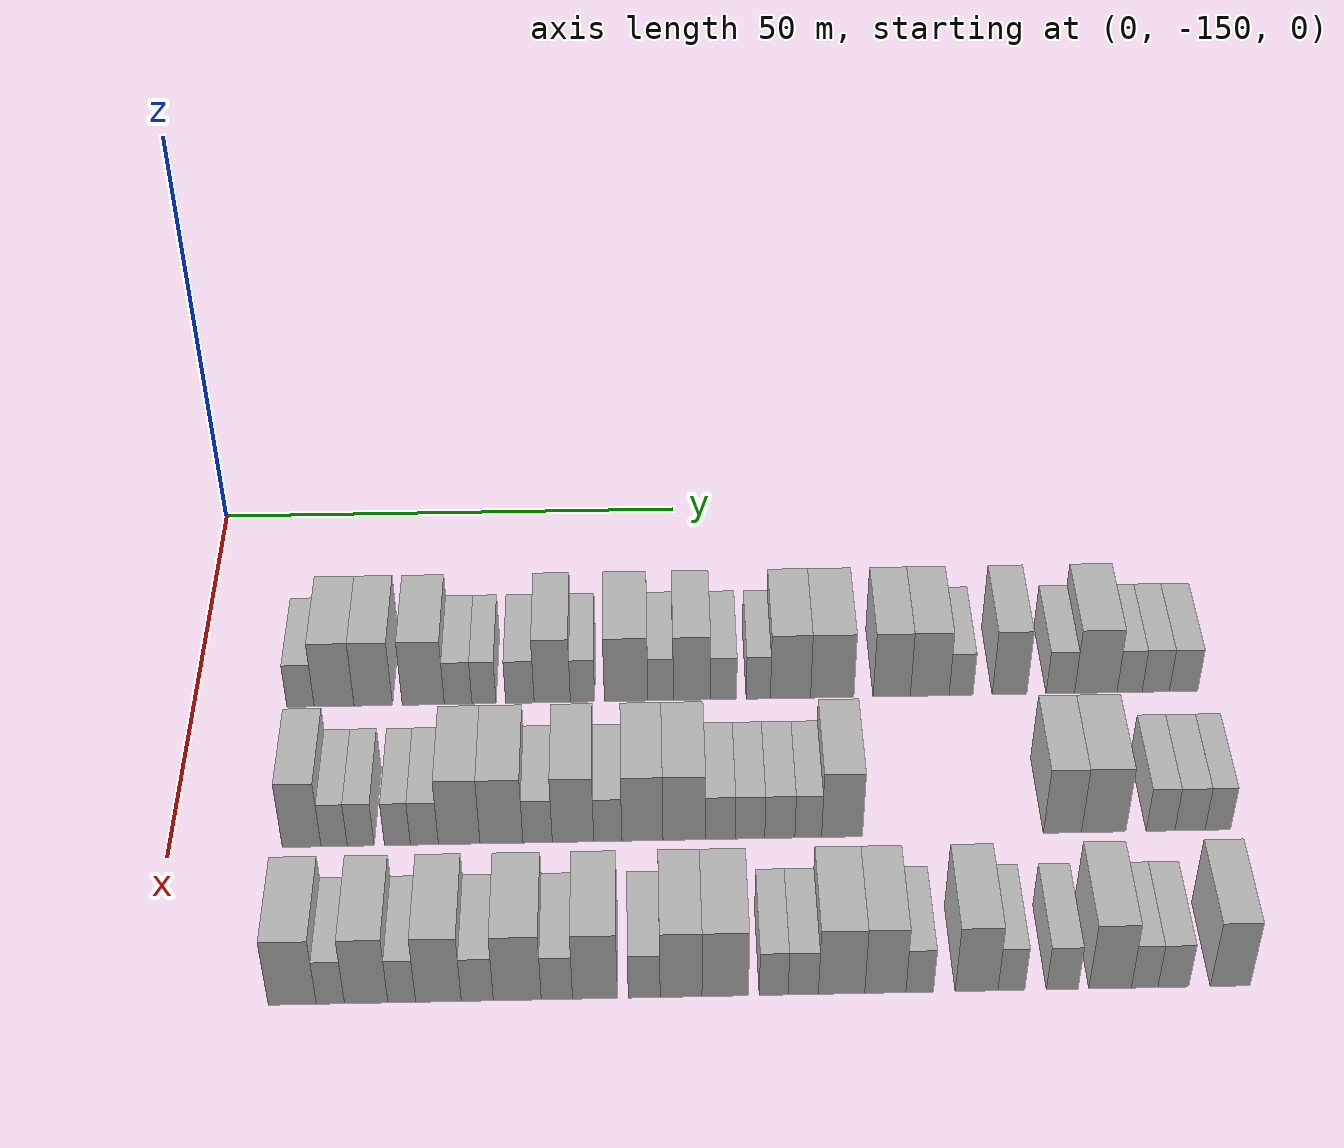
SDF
<sdf version="1.6">
 <world name="default">
  <model name="building_23">
   <static>1</static>
   <pose>25.0000 -138.9310 0 0.000000 0.000000 0.000000</pose>
   <link name="link">
    <pose>0 0 3.00 0 0 0</pose>
    <collision name="collision"><geometry><box><size>10.0000 2.8036 6.0000</size></box></geometry></collision>
    <visual name="visual">
     <cast_shadows>0</cast_shadows>
     <geometry><box><size>10.0000 2.8036 6.0000</size></box></geometry>
     <material>
      <script>
       <uri>model://HANNAS_wall/materials/scripts</uri>
       <uri>model://HANNAS_wall/materials/textures</uri>
       <name>vrc/HANNAS_wall</name>
      </script>
     </material>
    </visual>
   </link>
  </model>
  <model name="building_24">
   <static>1</static>
   <pose>25.0000 -135.4811 0 0.000000 0.000000 0.000000</pose>
   <link name="link">
    <pose>0 0 4.50 0 0 0</pose>
    <collision name="collision"><geometry><box><size>10.0000 4.0961 9.0000</size></box></geometry></collision>
    <visual name="visual">
     <cast_shadows>0</cast_shadows>
     <geometry><box><size>10.0000 4.0961 9.0000</size></box></geometry>
     <material>
      <script>
       <uri>model://HANNAS_wall/materials/scripts</uri>
       <uri>model://HANNAS_wall/materials/textures</uri>
       <name>vrc/HANNAS_wall</name>
      </script>
     </material>
    </visual>
   </link>
  </model>
  <model name="building_25">
   <static>1</static>
   <pose>25.0000 -131.4556 0 0.000000 0.000000 0.000000</pose>
   <link name="link">
    <pose>0 0 4.50 0 0 0</pose>
    <collision name="collision"><geometry><box><size>10.0000 3.9550 9.0000</size></box></geometry></collision>
    <visual name="visual">
     <cast_shadows>0</cast_shadows>
     <geometry><box><size>10.0000 3.9550 9.0000</size></box></geometry>
     <material>
      <script>
       <uri>model://HANNAS_wall/materials/scripts</uri>
       <uri>model://HANNAS_wall/materials/textures</uri>
       <name>vrc/HANNAS_wall</name>
      </script>
     </material>
    </visual>
   </link>
  </model>
  <model name="building_26">
   <static>1</static>
   <pose>25.0000 -126.3075 0 0.000000 0.000000 0.000000</pose>
   <link name="link">
    <pose>0 0 4.50 0 0 0</pose>
    <collision name="collision"><geometry><box><size>10.0000 4.3412 9.0000</size></box></geometry></collision>
    <visual name="visual">
     <cast_shadows>0</cast_shadows>
     <geometry><box><size>10.0000 4.3412 9.0000</size></box></geometry>
     <material>
      <script>
       <uri>model://HANNAS_wall/materials/scripts</uri>
       <uri>model://HANNAS_wall/materials/textures</uri>
       <name>vrc/HANNAS_wall</name>
      </script>
     </material>
    </visual>
   </link>
  </model>
  <model name="building_27">
   <static>1</static>
   <pose>25.0000 -122.7158 0 0.000000 0.000000 0.000000</pose>
   <link name="link">
    <pose>0 0 3.00 0 0 0</pose>
    <collision name="collision"><geometry><box><size>10.0000 2.8422 6.0000</size></box></geometry></collision>
    <visual name="visual">
     <cast_shadows>0</cast_shadows>
     <geometry><box><size>10.0000 2.8422 6.0000</size></box></geometry>
     <material>
      <script>
       <uri>model://HANNAS_wall/materials/scripts</uri>
       <uri>model://HANNAS_wall/materials/textures</uri>
       <name>vrc/HANNAS_wall</name>
      </script>
     </material>
    </visual>
   </link>
  </model>
  <model name="building_28">
   <static>1</static>
   <pose>25.0000 -120.0537 0 0.000000 0.000000 0.000000</pose>
   <link name="link">
    <pose>0 0 3.00 0 0 0</pose>
    <collision name="collision"><geometry><box><size>10.0000 2.4821 6.0000</size></box></geometry></collision>
    <visual name="visual">
     <cast_shadows>0</cast_shadows>
     <geometry><box><size>10.0000 2.4821 6.0000</size></box></geometry>
     <material>
      <script>
       <uri>model://HANNAS_wall/materials/scripts</uri>
       <uri>model://HANNAS_wall/materials/textures</uri>
       <name>vrc/HANNAS_wall</name>
      </script>
     </material>
    </visual>
   </link>
  </model>
  <model name="building_29">
   <static>1</static>
   <pose>25.0000 -116.3490 0 0.000000 0.000000 0.000000</pose>
   <link name="link">
    <pose>0 0 3.00 0 0 0</pose>
    <collision name="collision"><geometry><box><size>10.0000 2.9272 6.0000</size></box></geometry></collision>
    <visual name="visual">
     <cast_shadows>0</cast_shadows>
     <geometry><box><size>10.0000 2.9272 6.0000</size></box></geometry>
     <material>
      <script>
       <uri>model://HANNAS_wall/materials/scripts</uri>
       <uri>model://HANNAS_wall/materials/textures</uri>
       <name>vrc/HANNAS_wall</name>
      </script>
     </material>
    </visual>
   </link>
  </model>
  <model name="building_30">
   <static>1</static>
   <pose>25.0000 -113.0159 0 0.000000 0.000000 0.000000</pose>
   <link name="link">
    <pose>0 0 4.50 0 0 0</pose>
    <collision name="collision"><geometry><box><size>10.0000 3.7389 9.0000</size></box></geometry></collision>
    <visual name="visual">
     <cast_shadows>0</cast_shadows>
     <geometry><box><size>10.0000 3.7389 9.0000</size></box></geometry>
     <material>
      <script>
       <uri>model://HANNAS_wall/materials/scripts</uri>
       <uri>model://HANNAS_wall/materials/textures</uri>
       <name>vrc/HANNAS_wall</name>
      </script>
     </material>
    </visual>
   </link>
  </model>
  <model name="building_31">
   <static>1</static>
   <pose>25.0000 -109.8882 0 0.000000 0.000000 0.000000</pose>
   <link name="link">
    <pose>0 0 3.00 0 0 0</pose>
    <collision name="collision"><geometry><box><size>10.0000 2.5166 6.0000</size></box></geometry></collision>
    <visual name="visual">
     <cast_shadows>0</cast_shadows>
     <geometry><box><size>10.0000 2.5166 6.0000</size></box></geometry>
     <material>
      <script>
       <uri>model://HANNAS_wall/materials/scripts</uri>
       <uri>model://HANNAS_wall/materials/textures</uri>
       <name>vrc/HANNAS_wall</name>
      </script>
     </material>
    </visual>
   </link>
  </model>
  <model name="building_32">
   <static>1</static>
   <pose>25.0000 -105.3894 0 0.000000 0.000000 0.000000</pose>
   <link name="link">
    <pose>0 0 4.50 0 0 0</pose>
    <collision name="collision"><geometry><box><size>10.0000 4.4808 9.0000</size></box></geometry></collision>
    <visual name="visual">
     <cast_shadows>0</cast_shadows>
     <geometry><box><size>10.0000 4.4808 9.0000</size></box></geometry>
     <material>
      <script>
       <uri>model://HANNAS_wall/materials/scripts</uri>
       <uri>model://HANNAS_wall/materials/textures</uri>
       <name>vrc/HANNAS_wall</name>
      </script>
     </material>
    </visual>
   </link>
  </model>
  <model name="building_33">
   <static>1</static>
   <pose>25.0000 -101.8352 0 0.000000 0.000000 0.000000</pose>
   <link name="link">
    <pose>0 0 3.00 0 0 0</pose>
    <collision name="collision"><geometry><box><size>10.0000 2.6276 6.0000</size></box></geometry></collision>
    <visual name="visual">
     <cast_shadows>0</cast_shadows>
     <geometry><box><size>10.0000 2.6276 6.0000</size></box></geometry>
     <material>
      <script>
       <uri>model://HANNAS_wall/materials/scripts</uri>
       <uri>model://HANNAS_wall/materials/textures</uri>
       <name>vrc/HANNAS_wall</name>
      </script>
     </material>
    </visual>
   </link>
  </model>
  <model name="building_34">
   <static>1</static>
   <pose>25.0000 -98.6064 0 0.000000 0.000000 0.000000</pose>
   <link name="link">
    <pose>0 0 4.50 0 0 0</pose>
    <collision name="collision"><geometry><box><size>10.0000 3.8301 9.0000</size></box></geometry></collision>
    <visual name="visual">
     <cast_shadows>0</cast_shadows>
     <geometry><box><size>10.0000 3.8301 9.0000</size></box></geometry>
     <material>
      <script>
       <uri>model://HANNAS_wall/materials/scripts</uri>
       <uri>model://HANNAS_wall/materials/textures</uri>
       <name>vrc/HANNAS_wall</name>
      </script>
     </material>
    </visual>
   </link>
  </model>
  <model name="building_35">
   <static>1</static>
   <pose>25.0000 -95.3364 0 0.000000 0.000000 0.000000</pose>
   <link name="link">
    <pose>0 0 3.00 0 0 0</pose>
    <collision name="collision"><geometry><box><size>10.0000 2.7099 6.0000</size></box></geometry></collision>
    <visual name="visual">
     <cast_shadows>0</cast_shadows>
     <geometry><box><size>10.0000 2.7099 6.0000</size></box></geometry>
     <material>
      <script>
       <uri>model://HANNAS_wall/materials/scripts</uri>
       <uri>model://HANNAS_wall/materials/textures</uri>
       <name>vrc/HANNAS_wall</name>
      </script>
     </material>
    </visual>
   </link>
  </model>
  <model name="building_36">
   <static>1</static>
   <pose>25.0000 -91.7302 0 0.000000 0.000000 0.000000</pose>
   <link name="link">
    <pose>0 0 3.00 0 0 0</pose>
    <collision name="collision"><geometry><box><size>10.0000 2.5024 6.0000</size></box></geometry></collision>
    <visual name="visual">
     <cast_shadows>0</cast_shadows>
     <geometry><box><size>10.0000 2.5024 6.0000</size></box></geometry>
     <material>
      <script>
       <uri>model://HANNAS_wall/materials/scripts</uri>
       <uri>model://HANNAS_wall/materials/textures</uri>
       <name>vrc/HANNAS_wall</name>
      </script>
     </material>
    </visual>
   </link>
  </model>
  <model name="building_37">
   <static>1</static>
   <pose>25.0000 -88.4005 0 0.000000 0.000000 0.000000</pose>
   <link name="link">
    <pose>0 0 4.50 0 0 0</pose>
    <collision name="collision"><geometry><box><size>10.0000 4.1570 9.0000</size></box></geometry></collision>
    <visual name="visual">
     <cast_shadows>0</cast_shadows>
     <geometry><box><size>10.0000 4.1570 9.0000</size></box></geometry>
     <material>
      <script>
       <uri>model://HANNAS_wall/materials/scripts</uri>
       <uri>model://HANNAS_wall/materials/textures</uri>
       <name>vrc/HANNAS_wall</name>
      </script>
     </material>
    </visual>
   </link>
  </model>
  <model name="building_38">
   <static>1</static>
   <pose>25.0000 -84.0828 0 0.000000 0.000000 0.000000</pose>
   <link name="link">
    <pose>0 0 4.50 0 0 0</pose>
    <collision name="collision"><geometry><box><size>10.0000 4.4784 9.0000</size></box></geometry></collision>
    <visual name="visual">
     <cast_shadows>0</cast_shadows>
     <geometry><box><size>10.0000 4.4784 9.0000</size></box></geometry>
     <material>
      <script>
       <uri>model://HANNAS_wall/materials/scripts</uri>
       <uri>model://HANNAS_wall/materials/textures</uri>
       <name>vrc/HANNAS_wall</name>
      </script>
     </material>
    </visual>
   </link>
  </model>
  <model name="building_39">
   <static>1</static>
   <pose>25.0000 -77.9146 0 0.000000 0.000000 0.000000</pose>
   <link name="link">
    <pose>0 0 4.50 0 0 0</pose>
    <collision name="collision"><geometry><box><size>10.0000 3.8579 9.0000</size></box></geometry></collision>
    <visual name="visual">
     <cast_shadows>0</cast_shadows>
     <geometry><box><size>10.0000 3.8579 9.0000</size></box></geometry>
     <material>
      <script>
       <uri>model://HANNAS_wall/materials/scripts</uri>
       <uri>model://HANNAS_wall/materials/textures</uri>
       <name>vrc/HANNAS_wall</name>
      </script>
     </material>
    </visual>
   </link>
  </model>
  <model name="building_40">
   <static>1</static>
   <pose>25.0000 -73.9750 0 0.000000 0.000000 0.000000</pose>
   <link name="link">
    <pose>0 0 4.50 0 0 0</pose>
    <collision name="collision"><geometry><box><size>10.0000 4.0212 9.0000</size></box></geometry></collision>
    <visual name="visual">
     <cast_shadows>0</cast_shadows>
     <geometry><box><size>10.0000 4.0212 9.0000</size></box></geometry>
     <material>
      <script>
       <uri>model://HANNAS_wall/materials/scripts</uri>
       <uri>model://HANNAS_wall/materials/textures</uri>
       <name>vrc/HANNAS_wall</name>
      </script>
     </material>
    </visual>
   </link>
  </model>
  <model name="building_41">
   <static>1</static>
   <pose>25.0000 -70.7265 0 0.000000 0.000000 0.000000</pose>
   <link name="link">
    <pose>0 0 3.00 0 0 0</pose>
    <collision name="collision"><geometry><box><size>10.0000 2.4758 6.0000</size></box></geometry></collision>
    <visual name="visual">
     <cast_shadows>0</cast_shadows>
     <geometry><box><size>10.0000 2.4758 6.0000</size></box></geometry>
     <material>
      <script>
       <uri>model://HANNAS_wall/materials/scripts</uri>
       <uri>model://HANNAS_wall/materials/textures</uri>
       <name>vrc/HANNAS_wall</name>
      </script>
     </material>
    </visual>
   </link>
  </model>
  <model name="building_42">
   <static>1</static>
   <pose>25.0000 -65.6878 0 0.000000 0.000000 0.000000</pose>
   <link name="link">
    <pose>0 0 4.50 0 0 0</pose>
    <collision name="collision"><geometry><box><size>10.0000 3.6017 9.0000</size></box></geometry></collision>
    <visual name="visual">
     <cast_shadows>0</cast_shadows>
     <geometry><box><size>10.0000 3.6017 9.0000</size></box></geometry>
     <material>
      <script>
       <uri>model://HANNAS_wall/materials/scripts</uri>
       <uri>model://HANNAS_wall/materials/textures</uri>
       <name>vrc/HANNAS_wall</name>
      </script>
     </material>
    </visual>
   </link>
  </model>
  <model name="building_43">
   <static>1</static>
   <pose>25.0000 -60.4096 0 0.000000 0.000000 0.000000</pose>
   <link name="link">
    <pose>0 0 3.00 0 0 0</pose>
    <collision name="collision"><geometry><box><size>10.0000 2.9546 6.0000</size></box></geometry></collision>
    <visual name="visual">
     <cast_shadows>0</cast_shadows>
     <geometry><box><size>10.0000 2.9546 6.0000</size></box></geometry>
     <material>
      <script>
       <uri>model://HANNAS_wall/materials/scripts</uri>
       <uri>model://HANNAS_wall/materials/textures</uri>
       <name>vrc/HANNAS_wall</name>
      </script>
     </material>
    </visual>
   </link>
  </model>
  <model name="building_44">
   <static>1</static>
   <pose>25.0000 -56.7264 0 0.000000 0.000000 0.000000</pose>
   <link name="link">
    <pose>0 0 4.50 0 0 0</pose>
    <collision name="collision"><geometry><box><size>10.0000 4.4117 9.0000</size></box></geometry></collision>
    <visual name="visual">
     <cast_shadows>0</cast_shadows>
     <geometry><box><size>10.0000 4.4117 9.0000</size></box></geometry>
     <material>
      <script>
       <uri>model://HANNAS_wall/materials/scripts</uri>
       <uri>model://HANNAS_wall/materials/textures</uri>
       <name>vrc/HANNAS_wall</name>
      </script>
     </material>
    </visual>
   </link>
  </model>
  <model name="building_45">
   <static>1</static>
   <pose>25.0000 -53.2146 0 0.000000 0.000000 0.000000</pose>
   <link name="link">
    <pose>0 0 3.00 0 0 0</pose>
    <collision name="collision"><geometry><box><size>10.0000 2.6120 6.0000</size></box></geometry></collision>
    <visual name="visual">
     <cast_shadows>0</cast_shadows>
     <geometry><box><size>10.0000 2.6120 6.0000</size></box></geometry>
     <material>
      <script>
       <uri>model://HANNAS_wall/materials/scripts</uri>
       <uri>model://HANNAS_wall/materials/textures</uri>
       <name>vrc/HANNAS_wall</name>
      </script>
     </material>
    </visual>
   </link>
  </model>
  <model name="building_46">
   <static>1</static>
   <pose>25.0000 -50.4866 0 0.000000 0.000000 0.000000</pose>
   <link name="link">
    <pose>0 0 3.00 0 0 0</pose>
    <collision name="collision"><geometry><box><size>10.0000 2.8438 6.0000</size></box></geometry></collision>
    <visual name="visual">
     <cast_shadows>0</cast_shadows>
     <geometry><box><size>10.0000 2.8438 6.0000</size></box></geometry>
     <material>
      <script>
       <uri>model://HANNAS_wall/materials/scripts</uri>
       <uri>model://HANNAS_wall/materials/textures</uri>
       <name>vrc/HANNAS_wall</name>
      </script>
     </material>
    </visual>
   </link>
  </model>
  <model name="building_47">
   <static>1</static>
   <pose>25.0000 -47.5885 0 0.000000 0.000000 0.000000</pose>
   <link name="link">
    <pose>0 0 3.00 0 0 0</pose>
    <collision name="collision"><geometry><box><size>10.0000 2.9524 6.0000</size></box></geometry></collision>
    <visual name="visual">
     <cast_shadows>0</cast_shadows>
     <geometry><box><size>10.0000 2.9524 6.0000</size></box></geometry>
     <material>
      <script>
       <uri>model://HANNAS_wall/materials/scripts</uri>
       <uri>model://HANNAS_wall/materials/textures</uri>
       <name>vrc/HANNAS_wall</name>
      </script>
     </material>
    </visual>
   </link>
  </model>
  <model name="building_148">
   <static>1</static>
   <pose>44.0000 -137.0550 0 0.000000 0.000000 0.000000</pose>
   <link name="link">
    <pose>0 0 4.50 0 0 0</pose>
    <collision name="collision"><geometry><box><size>10.0000 3.7545 9.0000</size></box></geometry></collision>
    <visual name="visual">
     <cast_shadows>0</cast_shadows>
     <geometry><box><size>10.0000 3.7545 9.0000</size></box></geometry>
     <material>
      <script>
       <uri>model://HANNAS_wall/materials/scripts</uri>
       <uri>model://HANNAS_wall/materials/textures</uri>
       <name>vrc/HANNAS_wall</name>
      </script>
     </material>
    </visual>
   </link>
  </model>
  <model name="building_149">
   <static>1</static>
   <pose>44.0000 -133.9026 0 0.000000 0.000000 0.000000</pose>
   <link name="link">
    <pose>0 0 3.00 0 0 0</pose>
    <collision name="collision"><geometry><box><size>10.0000 2.5504 6.0000</size></box></geometry></collision>
    <visual name="visual">
     <cast_shadows>0</cast_shadows>
     <geometry><box><size>10.0000 2.5504 6.0000</size></box></geometry>
     <material>
      <script>
       <uri>model://HANNAS_wall/materials/scripts</uri>
       <uri>model://HANNAS_wall/materials/textures</uri>
       <name>vrc/HANNAS_wall</name>
      </script>
     </material>
    </visual>
   </link>
  </model>
  <model name="building_150">
   <static>1</static>
   <pose>44.0000 -131.3201 0 0.000000 0.000000 0.000000</pose>
   <link name="link">
    <pose>0 0 3.00 0 0 0</pose>
    <collision name="collision"><geometry><box><size>10.0000 2.6146 6.0000</size></box></geometry></collision>
    <visual name="visual">
     <cast_shadows>0</cast_shadows>
     <geometry><box><size>10.0000 2.6146 6.0000</size></box></geometry>
     <material>
      <script>
       <uri>model://HANNAS_wall/materials/scripts</uri>
       <uri>model://HANNAS_wall/materials/textures</uri>
       <name>vrc/HANNAS_wall</name>
      </script>
     </material>
    </visual>
   </link>
  </model>
  <model name="building_151">
   <static>1</static>
   <pose>44.0000 -127.7524 0 0.000000 0.000000 0.000000</pose>
   <link name="link">
    <pose>0 0 3.00 0 0 0</pose>
    <collision name="collision"><geometry><box><size>10.0000 2.5208 6.0000</size></box></geometry></collision>
    <visual name="visual">
     <cast_shadows>0</cast_shadows>
     <geometry><box><size>10.0000 2.5208 6.0000</size></box></geometry>
     <material>
      <script>
       <uri>model://HANNAS_wall/materials/scripts</uri>
       <uri>model://HANNAS_wall/materials/textures</uri>
       <name>vrc/HANNAS_wall</name>
      </script>
     </material>
    </visual>
   </link>
  </model>
  <model name="building_152">
   <static>1</static>
   <pose>44.0000 -125.1302 0 0.000000 0.000000 0.000000</pose>
   <link name="link">
    <pose>0 0 3.00 0 0 0</pose>
    <collision name="collision"><geometry><box><size>10.0000 2.7235 6.0000</size></box></geometry></collision>
    <visual name="visual">
     <cast_shadows>0</cast_shadows>
     <geometry><box><size>10.0000 2.7235 6.0000</size></box></geometry>
     <material>
      <script>
       <uri>model://HANNAS_wall/materials/scripts</uri>
       <uri>model://HANNAS_wall/materials/textures</uri>
       <name>vrc/HANNAS_wall</name>
      </script>
     </material>
    </visual>
   </link>
  </model>
  <model name="building_153">
   <static>1</static>
   <pose>44.0000 -121.7438 0 0.000000 0.000000 0.000000</pose>
   <link name="link">
    <pose>0 0 4.50 0 0 0</pose>
    <collision name="collision"><geometry><box><size>10.0000 4.0493 9.0000</size></box></geometry></collision>
    <visual name="visual">
     <cast_shadows>0</cast_shadows>
     <geometry><box><size>10.0000 4.0493 9.0000</size></box></geometry>
     <material>
      <script>
       <uri>model://HANNAS_wall/materials/scripts</uri>
       <uri>model://HANNAS_wall/materials/textures</uri>
       <name>vrc/HANNAS_wall</name>
      </script>
     </material>
    </visual>
   </link>
  </model>
  <model name="building_154">
   <static>1</static>
   <pose>44.0000 -117.6230 0 0.000000 0.000000 0.000000</pose>
   <link name="link">
    <pose>0 0 4.50 0 0 0</pose>
    <collision name="collision"><geometry><box><size>10.0000 4.1924 9.0000</size></box></geometry></collision>
    <visual name="visual">
     <cast_shadows>0</cast_shadows>
     <geometry><box><size>10.0000 4.1924 9.0000</size></box></geometry>
     <material>
      <script>
       <uri>model://HANNAS_wall/materials/scripts</uri>
       <uri>model://HANNAS_wall/materials/textures</uri>
       <name>vrc/HANNAS_wall</name>
      </script>
     </material>
    </visual>
   </link>
  </model>
  <model name="building_155">
   <static>1</static>
   <pose>44.0000 -114.0986 0 0.000000 0.000000 0.000000</pose>
   <link name="link">
    <pose>0 0 3.00 0 0 0</pose>
    <collision name="collision"><geometry><box><size>10.0000 2.8564 6.0000</size></box></geometry></collision>
    <visual name="visual">
     <cast_shadows>0</cast_shadows>
     <geometry><box><size>10.0000 2.8564 6.0000</size></box></geometry>
     <material>
      <script>
       <uri>model://HANNAS_wall/materials/scripts</uri>
       <uri>model://HANNAS_wall/materials/textures</uri>
       <name>vrc/HANNAS_wall</name>
      </script>
     </material>
    </visual>
   </link>
  </model>
  <model name="building_156">
   <static>1</static>
   <pose>44.0000 -110.6460 0 0.000000 0.000000 0.000000</pose>
   <link name="link">
    <pose>0 0 4.50 0 0 0</pose>
    <collision name="collision"><geometry><box><size>10.0000 4.0487 9.0000</size></box></geometry></collision>
    <visual name="visual">
     <cast_shadows>0</cast_shadows>
     <geometry><box><size>10.0000 4.0487 9.0000</size></box></geometry>
     <material>
      <script>
       <uri>model://HANNAS_wall/materials/scripts</uri>
       <uri>model://HANNAS_wall/materials/textures</uri>
       <name>vrc/HANNAS_wall</name>
      </script>
     </material>
    </visual>
   </link>
  </model>
  <model name="building_157">
   <static>1</static>
   <pose>44.0000 -107.2489 0 0.000000 0.000000 0.000000</pose>
   <link name="link">
    <pose>0 0 3.00 0 0 0</pose>
    <collision name="collision"><geometry><box><size>10.0000 2.7455 6.0000</size></box></geometry></collision>
    <visual name="visual">
     <cast_shadows>0</cast_shadows>
     <geometry><box><size>10.0000 2.7455 6.0000</size></box></geometry>
     <material>
      <script>
       <uri>model://HANNAS_wall/materials/scripts</uri>
       <uri>model://HANNAS_wall/materials/textures</uri>
       <name>vrc/HANNAS_wall</name>
      </script>
     </material>
    </visual>
   </link>
  </model>
  <model name="building_158">
   <static>1</static>
   <pose>44.0000 -103.8751 0 0.000000 0.000000 0.000000</pose>
   <link name="link">
    <pose>0 0 4.50 0 0 0</pose>
    <collision name="collision"><geometry><box><size>10.0000 4.0020 9.0000</size></box></geometry></collision>
    <visual name="visual">
     <cast_shadows>0</cast_shadows>
     <geometry><box><size>10.0000 4.0020 9.0000</size></box></geometry>
     <material>
      <script>
       <uri>model://HANNAS_wall/materials/scripts</uri>
       <uri>model://HANNAS_wall/materials/textures</uri>
       <name>vrc/HANNAS_wall</name>
      </script>
     </material>
    </visual>
   </link>
  </model>
  <model name="building_159">
   <static>1</static>
   <pose>44.0000 -99.7988 0 0.000000 0.000000 0.000000</pose>
   <link name="link">
    <pose>0 0 4.50 0 0 0</pose>
    <collision name="collision"><geometry><box><size>10.0000 4.1507 9.0000</size></box></geometry></collision>
    <visual name="visual">
     <cast_shadows>0</cast_shadows>
     <geometry><box><size>10.0000 4.1507 9.0000</size></box></geometry>
     <material>
      <script>
       <uri>model://HANNAS_wall/materials/scripts</uri>
       <uri>model://HANNAS_wall/materials/textures</uri>
       <name>vrc/HANNAS_wall</name>
      </script>
     </material>
    </visual>
   </link>
  </model>
  <model name="building_160">
   <static>1</static>
   <pose>44.0000 -96.2697 0 0.000000 0.000000 0.000000</pose>
   <link name="link">
    <pose>0 0 3.00 0 0 0</pose>
    <collision name="collision"><geometry><box><size>10.0000 2.9073 6.0000</size></box></geometry></collision>
    <visual name="visual">
     <cast_shadows>0</cast_shadows>
     <geometry><box><size>10.0000 2.9073 6.0000</size></box></geometry>
     <material>
      <script>
       <uri>model://HANNAS_wall/materials/scripts</uri>
       <uri>model://HANNAS_wall/materials/textures</uri>
       <name>vrc/HANNAS_wall</name>
      </script>
     </material>
    </visual>
   </link>
  </model>
  <model name="building_161">
   <static>1</static>
   <pose>44.0000 -93.3725 0 0.000000 0.000000 0.000000</pose>
   <link name="link">
    <pose>0 0 3.00 0 0 0</pose>
    <collision name="collision"><geometry><box><size>10.0000 2.8871 6.0000</size></box></geometry></collision>
    <visual name="visual">
     <cast_shadows>0</cast_shadows>
     <geometry><box><size>10.0000 2.8871 6.0000</size></box></geometry>
     <material>
      <script>
       <uri>model://HANNAS_wall/materials/scripts</uri>
       <uri>model://HANNAS_wall/materials/textures</uri>
       <name>vrc/HANNAS_wall</name>
      </script>
     </material>
    </visual>
   </link>
  </model>
  <model name="building_162">
   <static>1</static>
   <pose>44.0000 -90.4573 0 0.000000 0.000000 0.000000</pose>
   <link name="link">
    <pose>0 0 3.00 0 0 0</pose>
    <collision name="collision"><geometry><box><size>10.0000 2.9433 6.0000</size></box></geometry></collision>
    <visual name="visual">
     <cast_shadows>0</cast_shadows>
     <geometry><box><size>10.0000 2.9433 6.0000</size></box></geometry>
     <material>
      <script>
       <uri>model://HANNAS_wall/materials/scripts</uri>
       <uri>model://HANNAS_wall/materials/textures</uri>
       <name>vrc/HANNAS_wall</name>
      </script>
     </material>
    </visual>
   </link>
  </model>
  <model name="building_163">
   <static>1</static>
   <pose>44.0000 -87.6757 0 0.000000 0.000000 0.000000</pose>
   <link name="link">
    <pose>0 0 3.00 0 0 0</pose>
    <collision name="collision"><geometry><box><size>10.0000 2.6199 6.0000</size></box></geometry></collision>
    <visual name="visual">
     <cast_shadows>0</cast_shadows>
     <geometry><box><size>10.0000 2.6199 6.0000</size></box></geometry>
     <material>
      <script>
       <uri>model://HANNAS_wall/materials/scripts</uri>
       <uri>model://HANNAS_wall/materials/textures</uri>
       <name>vrc/HANNAS_wall</name>
      </script>
     </material>
    </visual>
   </link>
  </model>
  <model name="building_164">
   <static>1</static>
   <pose>44.0000 -84.3680 0 0.000000 0.000000 0.000000</pose>
   <link name="link">
    <pose>0 0 4.50 0 0 0</pose>
    <collision name="collision"><geometry><box><size>10.0000 3.9955 9.0000</size></box></geometry></collision>
    <visual name="visual">
     <cast_shadows>0</cast_shadows>
     <geometry><box><size>10.0000 3.9955 9.0000</size></box></geometry>
     <material>
      <script>
       <uri>model://HANNAS_wall/materials/scripts</uri>
       <uri>model://HANNAS_wall/materials/textures</uri>
       <name>vrc/HANNAS_wall</name>
      </script>
     </material>
    </visual>
   </link>
  </model>
  <model name="building_165">
   <static>1</static>
   <pose>44.0000 -62.7465 0 0.000000 0.000000 0.000000</pose>
   <link name="link">
    <pose>0 0 4.50 0 0 0</pose>
    <collision name="collision"><geometry><box><size>10.0000 3.7492 9.0000</size></box></geometry></collision>
    <visual name="visual">
     <cast_shadows>0</cast_shadows>
     <geometry><box><size>10.0000 3.7492 9.0000</size></box></geometry>
     <material>
      <script>
       <uri>model://HANNAS_wall/materials/scripts</uri>
       <uri>model://HANNAS_wall/materials/textures</uri>
       <name>vrc/HANNAS_wall</name>
      </script>
     </material>
    </visual>
   </link>
  </model>
  <model name="building_166">
   <static>1</static>
   <pose>44.0000 -58.6935 0 0.000000 0.000000 0.000000</pose>
   <link name="link">
    <pose>0 0 4.50 0 0 0</pose>
    <collision name="collision"><geometry><box><size>10.0000 4.3569 9.0000</size></box></geometry></collision>
    <visual name="visual">
     <cast_shadows>0</cast_shadows>
     <geometry><box><size>10.0000 4.3569 9.0000</size></box></geometry>
     <material>
      <script>
       <uri>model://HANNAS_wall/materials/scripts</uri>
       <uri>model://HANNAS_wall/materials/textures</uri>
       <name>vrc/HANNAS_wall</name>
      </script>
     </material>
    </visual>
   </link>
  </model>
  <model name="building_167">
   <static>1</static>
   <pose>44.0000 -53.1075 0 0.000000 0.000000 0.000000</pose>
   <link name="link">
    <pose>0 0 3.00 0 0 0</pose>
    <collision name="collision"><geometry><box><size>10.0000 2.8149 6.0000</size></box></geometry></collision>
    <visual name="visual">
     <cast_shadows>0</cast_shadows>
     <geometry><box><size>10.0000 2.8149 6.0000</size></box></geometry>
     <material>
      <script>
       <uri>model://HANNAS_wall/materials/scripts</uri>
       <uri>model://HANNAS_wall/materials/textures</uri>
       <name>vrc/HANNAS_wall</name>
      </script>
     </material>
    </visual>
   </link>
  </model>
  <model name="building_168">
   <static>1</static>
   <pose>44.0000 -50.2106 0 0.000000 0.000000 0.000000</pose>
   <link name="link">
    <pose>0 0 3.00 0 0 0</pose>
    <collision name="collision"><geometry><box><size>10.0000 2.9791 6.0000</size></box></geometry></collision>
    <visual name="visual">
     <cast_shadows>0</cast_shadows>
     <geometry><box><size>10.0000 2.9791 6.0000</size></box></geometry>
     <material>
      <script>
       <uri>model://HANNAS_wall/materials/scripts</uri>
       <uri>model://HANNAS_wall/materials/textures</uri>
       <name>vrc/HANNAS_wall</name>
      </script>
     </material>
    </visual>
   </link>
  </model>
  <model name="building_169">
   <static>1</static>
   <pose>44.0000 -47.4678 0 0.000000 0.000000 0.000000</pose>
   <link name="link">
    <pose>0 0 3.00 0 0 0</pose>
    <collision name="collision"><geometry><box><size>10.0000 2.5063 6.0000</size></box></geometry></collision>
    <visual name="visual">
     <cast_shadows>0</cast_shadows>
     <geometry><box><size>10.0000 2.5063 6.0000</size></box></geometry>
     <material>
      <script>
       <uri>model://HANNAS_wall/materials/scripts</uri>
       <uri>model://HANNAS_wall/materials/textures</uri>
       <name>vrc/HANNAS_wall</name>
      </script>
     </material>
    </visual>
   </link>
  </model>
  <model name="building_270">
   <static>1</static>
   <pose>63.0000 -136.1548 0 0.000000 0.000000 0.000000</pose>
   <link name="link">
    <pose>0 0 4.50 0 0 0</pose>
    <collision name="collision"><geometry><box><size>10.0000 4.3928 9.0000</size></box></geometry></collision>
    <visual name="visual">
     <cast_shadows>0</cast_shadows>
     <geometry><box><size>10.0000 4.3928 9.0000</size></box></geometry>
     <material>
      <script>
       <uri>model://HANNAS_wall/materials/scripts</uri>
       <uri>model://HANNAS_wall/materials/textures</uri>
       <name>vrc/HANNAS_wall</name>
      </script>
     </material>
    </visual>
   </link>
  </model>
  <model name="building_271">
   <static>1</static>
   <pose>63.0000 -132.6714 0 0.000000 0.000000 0.000000</pose>
   <link name="link">
    <pose>0 0 3.00 0 0 0</pose>
    <collision name="collision"><geometry><box><size>10.0000 2.5740 6.0000</size></box></geometry></collision>
    <visual name="visual">
     <cast_shadows>0</cast_shadows>
     <geometry><box><size>10.0000 2.5740 6.0000</size></box></geometry>
     <material>
      <script>
       <uri>model://HANNAS_wall/materials/scripts</uri>
       <uri>model://HANNAS_wall/materials/textures</uri>
       <name>vrc/HANNAS_wall</name>
      </script>
     </material>
    </visual>
   </link>
  </model>
  <model name="building_272">
   <static>1</static>
   <pose>63.0000 -129.3933 0 0.000000 0.000000 0.000000</pose>
   <link name="link">
    <pose>0 0 4.50 0 0 0</pose>
    <collision name="collision"><geometry><box><size>10.0000 3.9822 9.0000</size></box></geometry></collision>
    <visual name="visual">
     <cast_shadows>0</cast_shadows>
     <geometry><box><size>10.0000 3.9822 9.0000</size></box></geometry>
     <material>
      <script>
       <uri>model://HANNAS_wall/materials/scripts</uri>
       <uri>model://HANNAS_wall/materials/textures</uri>
       <name>vrc/HANNAS_wall</name>
      </script>
     </material>
    </visual>
   </link>
  </model>
  <model name="building_273">
   <static>1</static>
   <pose>63.0000 -126.1380 0 0.000000 0.000000 0.000000</pose>
   <link name="link">
    <pose>0 0 3.00 0 0 0</pose>
    <collision name="collision"><geometry><box><size>10.0000 2.5285 6.0000</size></box></geometry></collision>
    <visual name="visual">
     <cast_shadows>0</cast_shadows>
     <geometry><box><size>10.0000 2.5285 6.0000</size></box></geometry>
     <material>
      <script>
       <uri>model://HANNAS_wall/materials/scripts</uri>
       <uri>model://HANNAS_wall/materials/textures</uri>
       <name>vrc/HANNAS_wall</name>
      </script>
     </material>
    </visual>
   </link>
  </model>
  <model name="building_274">
   <static>1</static>
   <pose>63.0000 -122.7771 0 0.000000 0.000000 0.000000</pose>
   <link name="link">
    <pose>0 0 4.50 0 0 0</pose>
    <collision name="collision"><geometry><box><size>10.0000 4.1933 9.0000</size></box></geometry></collision>
    <visual name="visual">
     <cast_shadows>0</cast_shadows>
     <geometry><box><size>10.0000 4.1933 9.0000</size></box></geometry>
     <material>
      <script>
       <uri>model://HANNAS_wall/materials/scripts</uri>
       <uri>model://HANNAS_wall/materials/textures</uri>
       <name>vrc/HANNAS_wall</name>
      </script>
     </material>
    </visual>
   </link>
  </model>
  <model name="building_275">
   <static>1</static>
   <pose>63.0000 -119.2113 0 0.000000 0.000000 0.000000</pose>
   <link name="link">
    <pose>0 0 3.00 0 0 0</pose>
    <collision name="collision"><geometry><box><size>10.0000 2.9382 6.0000</size></box></geometry></collision>
    <visual name="visual">
     <cast_shadows>0</cast_shadows>
     <geometry><box><size>10.0000 2.9382 6.0000</size></box></geometry>
     <material>
      <script>
       <uri>model://HANNAS_wall/materials/scripts</uri>
       <uri>model://HANNAS_wall/materials/textures</uri>
       <name>vrc/HANNAS_wall</name>
      </script>
     </material>
    </visual>
   </link>
  </model>
  <model name="building_276">
   <static>1</static>
   <pose>63.0000 -115.5404 0 0.000000 0.000000 0.000000</pose>
   <link name="link">
    <pose>0 0 4.50 0 0 0</pose>
    <collision name="collision"><geometry><box><size>10.0000 4.4036 9.0000</size></box></geometry></collision>
    <visual name="visual">
     <cast_shadows>0</cast_shadows>
     <geometry><box><size>10.0000 4.4036 9.0000</size></box></geometry>
     <material>
      <script>
       <uri>model://HANNAS_wall/materials/scripts</uri>
       <uri>model://HANNAS_wall/materials/textures</uri>
       <name>vrc/HANNAS_wall</name>
      </script>
     </material>
    </visual>
   </link>
  </model>
  <model name="building_277">
   <static>1</static>
   <pose>63.0000 -111.9039 0 0.000000 0.000000 0.000000</pose>
   <link name="link">
    <pose>0 0 3.00 0 0 0</pose>
    <collision name="collision"><geometry><box><size>10.0000 2.8694 6.0000</size></box></geometry></collision>
    <visual name="visual">
     <cast_shadows>0</cast_shadows>
     <geometry><box><size>10.0000 2.8694 6.0000</size></box></geometry>
     <material>
      <script>
       <uri>model://HANNAS_wall/materials/scripts</uri>
       <uri>model://HANNAS_wall/materials/textures</uri>
       <name>vrc/HANNAS_wall</name>
      </script>
     </material>
    </visual>
   </link>
  </model>
  <model name="building_278">
   <static>1</static>
   <pose>63.0000 -108.4049 0 0.000000 0.000000 0.000000</pose>
   <link name="link">
    <pose>0 0 4.50 0 0 0</pose>
    <collision name="collision"><geometry><box><size>10.0000 4.1286 9.0000</size></box></geometry></collision>
    <visual name="visual">
     <cast_shadows>0</cast_shadows>
     <geometry><box><size>10.0000 4.1286 9.0000</size></box></geometry>
     <material>
      <script>
       <uri>model://HANNAS_wall/materials/scripts</uri>
       <uri>model://HANNAS_wall/materials/textures</uri>
       <name>vrc/HANNAS_wall</name>
      </script>
     </material>
    </visual>
   </link>
  </model>
  <model name="building_279">
   <static>1</static>
   <pose>63.0000 -103.8780 0 0.000000 0.000000 0.000000</pose>
   <link name="link">
    <pose>0 0 3.00 0 0 0</pose>
    <collision name="collision"><geometry><box><size>10.0000 2.9251 6.0000</size></box></geometry></collision>
    <visual name="visual">
     <cast_shadows>0</cast_shadows>
     <geometry><box><size>10.0000 2.9251 6.0000</size></box></geometry>
     <material>
      <script>
       <uri>model://HANNAS_wall/materials/scripts</uri>
       <uri>model://HANNAS_wall/materials/textures</uri>
       <name>vrc/HANNAS_wall</name>
      </script>
     </material>
    </visual>
   </link>
  </model>
  <model name="building_280">
   <static>1</static>
   <pose>63.0000 -100.4940 0 0.000000 0.000000 0.000000</pose>
   <link name="link">
    <pose>0 0 4.50 0 0 0</pose>
    <collision name="collision"><geometry><box><size>10.0000 3.8429 9.0000</size></box></geometry></collision>
    <visual name="visual">
     <cast_shadows>0</cast_shadows>
     <geometry><box><size>10.0000 3.8429 9.0000</size></box></geometry>
     <material>
      <script>
       <uri>model://HANNAS_wall/materials/scripts</uri>
       <uri>model://HANNAS_wall/materials/textures</uri>
       <name>vrc/HANNAS_wall</name>
      </script>
     </material>
    </visual>
   </link>
  </model>
  <model name="building_281">
   <static>1</static>
   <pose>63.0000 -96.4352 0 0.000000 0.000000 0.000000</pose>
   <link name="link">
    <pose>0 0 4.50 0 0 0</pose>
    <collision name="collision"><geometry><box><size>10.0000 4.2747 9.0000</size></box></geometry></collision>
    <visual name="visual">
     <cast_shadows>0</cast_shadows>
     <geometry><box><size>10.0000 4.2747 9.0000</size></box></geometry>
     <material>
      <script>
       <uri>model://HANNAS_wall/materials/scripts</uri>
       <uri>model://HANNAS_wall/materials/textures</uri>
       <name>vrc/HANNAS_wall</name>
      </script>
     </material>
    </visual>
   </link>
  </model>
  <model name="building_282">
   <static>1</static>
   <pose>63.0000 -91.9684 0 0.000000 0.000000 0.000000</pose>
   <link name="link">
    <pose>0 0 3.00 0 0 0</pose>
    <collision name="collision"><geometry><box><size>10.0000 2.6588 6.0000</size></box></geometry></collision>
    <visual name="visual">
     <cast_shadows>0</cast_shadows>
     <geometry><box><size>10.0000 2.6588 6.0000</size></box></geometry>
     <material>
      <script>
       <uri>model://HANNAS_wall/materials/scripts</uri>
       <uri>model://HANNAS_wall/materials/textures</uri>
       <name>vrc/HANNAS_wall</name>
      </script>
     </material>
    </visual>
   </link>
  </model>
  <model name="building_283">
   <static>1</static>
   <pose>63.0000 -89.2430 0 0.000000 0.000000 0.000000</pose>
   <link name="link">
    <pose>0 0 3.00 0 0 0</pose>
    <collision name="collision"><geometry><box><size>10.0000 2.7920 6.0000</size></box></geometry></collision>
    <visual name="visual">
     <cast_shadows>0</cast_shadows>
     <geometry><box><size>10.0000 2.7920 6.0000</size></box></geometry>
     <material>
      <script>
       <uri>model://HANNAS_wall/materials/scripts</uri>
       <uri>model://HANNAS_wall/materials/textures</uri>
       <name>vrc/HANNAS_wall</name>
      </script>
     </material>
    </visual>
   </link>
  </model>
  <model name="building_284">
   <static>1</static>
   <pose>63.0000 -85.7121 0 0.000000 0.000000 0.000000</pose>
   <link name="link">
    <pose>0 0 4.50 0 0 0</pose>
    <collision name="collision"><geometry><box><size>10.0000 4.2697 9.0000</size></box></geometry></collision>
    <visual name="visual">
     <cast_shadows>0</cast_shadows>
     <geometry><box><size>10.0000 4.2697 9.0000</size></box></geometry>
     <material>
      <script>
       <uri>model://HANNAS_wall/materials/scripts</uri>
       <uri>model://HANNAS_wall/materials/textures</uri>
       <name>vrc/HANNAS_wall</name>
      </script>
     </material>
    </visual>
   </link>
  </model>
  <model name="building_285">
   <static>1</static>
   <pose>63.0000 -81.6801 0 0.000000 0.000000 0.000000</pose>
   <link name="link">
    <pose>0 0 4.50 0 0 0</pose>
    <collision name="collision"><geometry><box><size>10.0000 3.7943 9.0000</size></box></geometry></collision>
    <visual name="visual">
     <cast_shadows>0</cast_shadows>
     <geometry><box><size>10.0000 3.7943 9.0000</size></box></geometry>
     <material>
      <script>
       <uri>model://HANNAS_wall/materials/scripts</uri>
       <uri>model://HANNAS_wall/materials/textures</uri>
       <name>vrc/HANNAS_wall</name>
      </script>
     </material>
    </visual>
   </link>
  </model>
  <model name="building_286">
   <static>1</static>
   <pose>63.0000 -78.5056 0 0.000000 0.000000 0.000000</pose>
   <link name="link">
    <pose>0 0 3.00 0 0 0</pose>
    <collision name="collision"><geometry><box><size>10.0000 2.5548 6.0000</size></box></geometry></collision>
    <visual name="visual">
     <cast_shadows>0</cast_shadows>
     <geometry><box><size>10.0000 2.5548 6.0000</size></box></geometry>
     <material>
      <script>
       <uri>model://HANNAS_wall/materials/scripts</uri>
       <uri>model://HANNAS_wall/materials/textures</uri>
       <name>vrc/HANNAS_wall</name>
      </script>
     </material>
    </visual>
   </link>
  </model>
  <model name="building_287">
   <static>1</static>
   <pose>63.0000 -73.2508 0 0.000000 0.000000 0.000000</pose>
   <link name="link">
    <pose>0 0 4.50 0 0 0</pose>
    <collision name="collision"><geometry><box><size>10.0000 3.9548 9.0000</size></box></geometry></collision>
    <visual name="visual">
     <cast_shadows>0</cast_shadows>
     <geometry><box><size>10.0000 3.9548 9.0000</size></box></geometry>
     <material>
      <script>
       <uri>model://HANNAS_wall/materials/scripts</uri>
       <uri>model://HANNAS_wall/materials/textures</uri>
       <name>vrc/HANNAS_wall</name>
      </script>
     </material>
    </visual>
   </link>
  </model>
  <model name="building_288">
   <static>1</static>
   <pose>63.0000 -70.0341 0 0.000000 0.000000 0.000000</pose>
   <link name="link">
    <pose>0 0 3.00 0 0 0</pose>
    <collision name="collision"><geometry><box><size>10.0000 2.4786 6.0000</size></box></geometry></collision>
    <visual name="visual">
     <cast_shadows>0</cast_shadows>
     <geometry><box><size>10.0000 2.4786 6.0000</size></box></geometry>
     <material>
      <script>
       <uri>model://HANNAS_wall/materials/scripts</uri>
       <uri>model://HANNAS_wall/materials/textures</uri>
       <name>vrc/HANNAS_wall</name>
      </script>
     </material>
    </visual>
   </link>
  </model>
  <model name="building_289">
   <static>1</static>
   <pose>63.0000 -65.3284 0 0.000000 0.000000 0.000000</pose>
   <link name="link">
    <pose>0 0 3.00 0 0 0</pose>
    <collision name="collision"><geometry><box><size>10.0000 2.9326 6.0000</size></box></geometry></collision>
    <visual name="visual">
     <cast_shadows>0</cast_shadows>
     <geometry><box><size>10.0000 2.9326 6.0000</size></box></geometry>
     <material>
      <script>
       <uri>model://HANNAS_wall/materials/scripts</uri>
       <uri>model://HANNAS_wall/materials/textures</uri>
       <name>vrc/HANNAS_wall</name>
      </script>
     </material>
    </visual>
   </link>
  </model>
  <model name="building_290">
   <static>1</static>
   <pose>63.0000 -60.8944 0 0.000000 0.000000 0.000000</pose>
   <link name="link">
    <pose>0 0 4.50 0 0 0</pose>
    <collision name="collision"><geometry><box><size>10.0000 3.9354 9.0000</size></box></geometry></collision>
    <visual name="visual">
     <cast_shadows>0</cast_shadows>
     <geometry><box><size>10.0000 3.9354 9.0000</size></box></geometry>
     <material>
      <script>
       <uri>model://HANNAS_wall/materials/scripts</uri>
       <uri>model://HANNAS_wall/materials/textures</uri>
       <name>vrc/HANNAS_wall</name>
      </script>
     </material>
    </visual>
   </link>
  </model>
  <model name="building_291">
   <static>1</static>
   <pose>63.0000 -57.6956 0 0.000000 0.000000 0.000000</pose>
   <link name="link">
    <pose>0 0 3.00 0 0 0</pose>
    <collision name="collision"><geometry><box><size>10.0000 2.4623 6.0000</size></box></geometry></collision>
    <visual name="visual">
     <cast_shadows>0</cast_shadows>
     <geometry><box><size>10.0000 2.4623 6.0000</size></box></geometry>
     <material>
      <script>
       <uri>model://HANNAS_wall/materials/scripts</uri>
       <uri>model://HANNAS_wall/materials/textures</uri>
       <name>vrc/HANNAS_wall</name>
      </script>
     </material>
    </visual>
   </link>
  </model>
  <model name="building_292">
   <static>1</static>
   <pose>63.0000 -55.0370 0 0.000000 0.000000 0.000000</pose>
   <link name="link">
    <pose>0 0 3.00 0 0 0</pose>
    <collision name="collision"><geometry><box><size>10.0000 2.8547 6.0000</size></box></geometry></collision>
    <visual name="visual">
     <cast_shadows>0</cast_shadows>
     <geometry><box><size>10.0000 2.8547 6.0000</size></box></geometry>
     <material>
      <script>
       <uri>model://HANNAS_wall/materials/scripts</uri>
       <uri>model://HANNAS_wall/materials/textures</uri>
       <name>vrc/HANNAS_wall</name>
      </script>
     </material>
    </visual>
   </link>
  </model>
  <model name="building_293">
   <static>1</static>
   <pose>63.0000 -49.7623 0 0.000000 0.000000 0.000000</pose>
   <link name="link">
    <pose>0 0 4.50 0 0 0</pose>
    <collision name="collision"><geometry><box><size>10.0000 3.6947 9.0000</size></box></geometry></collision>
    <visual name="visual">
     <cast_shadows>0</cast_shadows>
     <geometry><box><size>10.0000 3.6947 9.0000</size></box></geometry>
     <material>
      <script>
       <uri>model://HANNAS_wall/materials/scripts</uri>
       <uri>model://HANNAS_wall/materials/textures</uri>
       <name>vrc/HANNAS_wall</name>
      </script>
     </material>
    </visual>
   </link>
  </model>
 </world>
</sdf>
